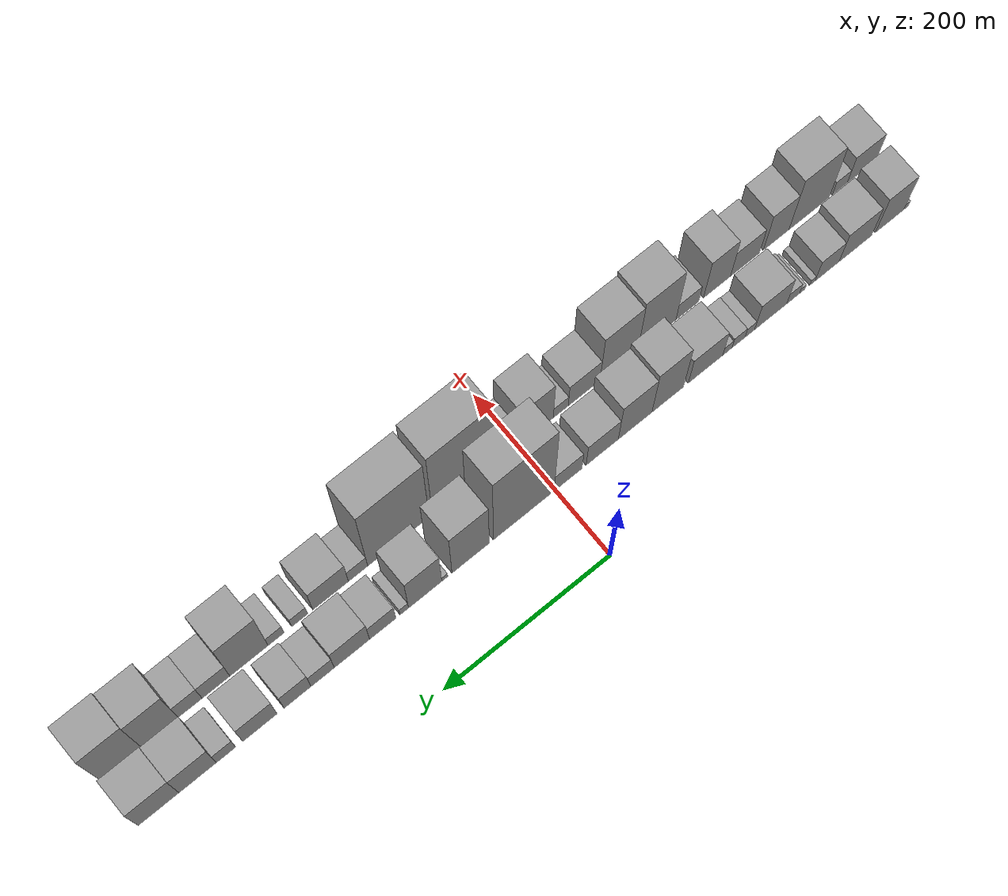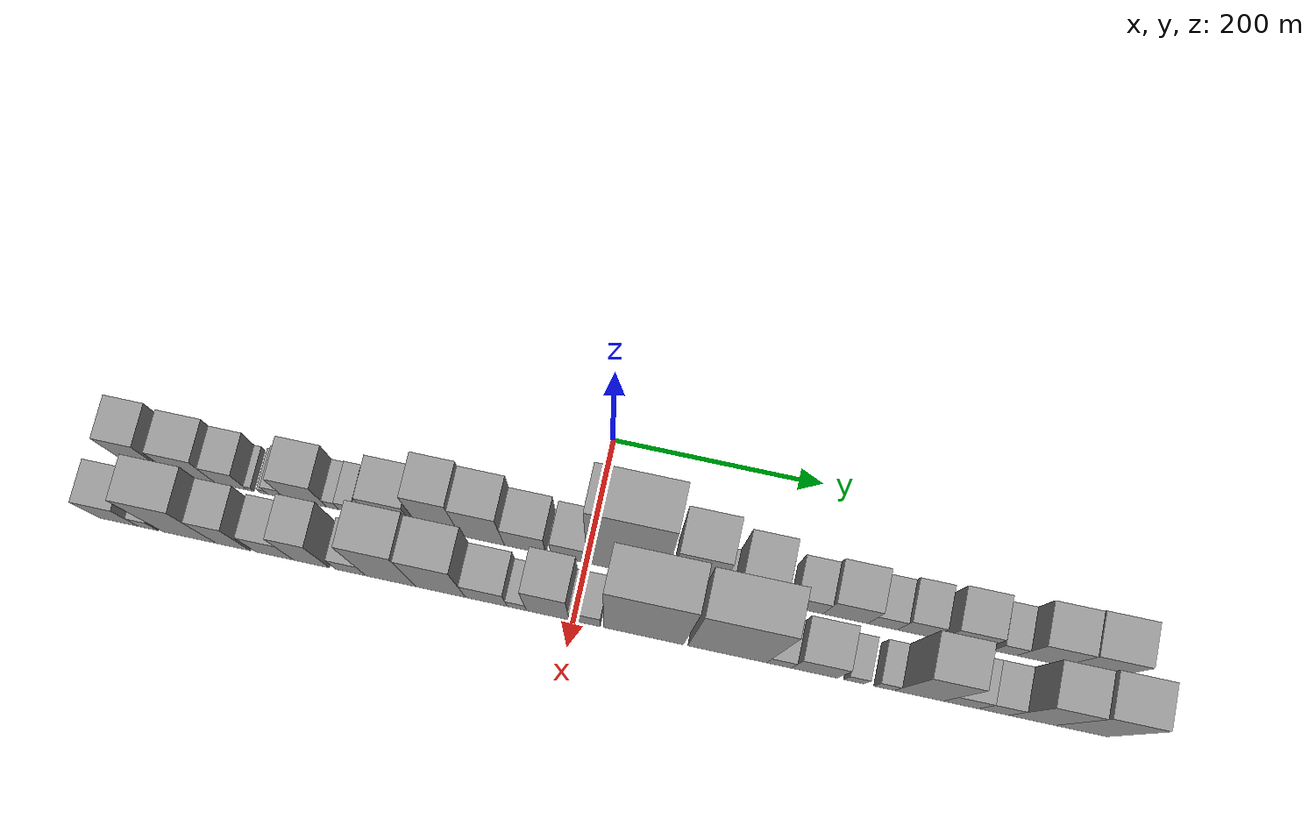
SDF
<sdf version="1.6">
 <world name="default">
  <scene>
   <sky><clouds><speed>12</speed></clouds></sky>
   <ambient>0.4 0.4 0.4 1</ambient>
   <background>0.7 0.7 0.7 1</background>
   <shadows>1</shadows>
  </scene>
  <gravity>0 0 -9.8066</gravity>
  <magnetic_field>6e-06 2.3e-05 -4.2e-05</magnetic_field>
  <physics default="0" name="default_physics" type="ode">
   <ode>
    <solver>
     <type>quick</type>
     <iters>10</iters>
     <sor>1.0</sor>
     <use_dynamic_moi_rescaling>0</use_dynamic_moi_rescaling>
    </solver>
    <constraints>
     <cfm>0</cfm>
     <erp>0.2</erp>
     <contact_max_correcting_vel>100</contact_max_correcting_vel>
     <contact_surface_layer>0.001</contact_surface_layer>
    </constraints>
   </ode>
   <max_step_size>0.004</max_step_size>
   <real_time_factor>1</real_time_factor>
   <real_time_update_rate>250</real_time_update_rate>
  </physics>
  <light name="sun" type="directional">
   <pose>0 0 10 0 0 0</pose>
   <diffuse>0.8 0.8 0.8 1</diffuse>
   <specular>0.2 0.2 0.2 1</specular>
   <attenuation>
    <range>1000</range>
    <constant>0.9</constant>
    <linear>0.01</linear>
    <quadratic>0.001</quadratic>
   </attenuation>
   <direction>-0.5 0.1 -0.9</direction>
  </light>
  <model name="building_1">
   <static>1</static>
   <pose>100.0000 -439.8868 0 0.000000 0.000000 0.000000</pose>
   <link name="link">
    <pose>0 0 7.50 0 0 0</pose>
    <collision name="collision"><geometry><box><size>40.0000 6.2265 15.0000</size></box></geometry></collision>
    <visual name="visual">
     <cast_shadows>0</cast_shadows>
     <geometry><box><size>40.0000 6.2265 15.0000</size></box></geometry>
     <material>
      <script>
       <uri>model://grey_wall/materials/scripts</uri>
       <uri>model://grey_wall/materials/textures</uri>
       <name>vrc/grey_wall</name>
      </script>
     </material>
    </visual>
   </link>
  </model>
  <model name="building_2">
   <static>1</static>
   <pose>100.0000 -418.5449 0 0.000000 0.000000 0.000000</pose>
   <link name="link">
    <pose>0 0 46.50 0 0 0</pose>
    <collision name="collision"><geometry><box><size>40.0000 36.4572 93.0000</size></box></geometry></collision>
    <visual name="visual">
     <cast_shadows>0</cast_shadows>
     <geometry><box><size>40.0000 36.4572 93.0000</size></box></geometry>
     <material>
      <script>
       <uri>model://grey_wall/materials/scripts</uri>
       <uri>model://grey_wall/materials/textures</uri>
       <name>vrc/grey_wall</name>
      </script>
     </material>
    </visual>
   </link>
  </model>
  <model name="building_3">
   <static>1</static>
   <pose>100.0000 -374.5498 0 0.000000 0.000000 0.000000</pose>
   <link name="link">
    <pose>0 0 39.00 0 0 0</pose>
    <collision name="collision"><geometry><box><size>40.0000 41.5331 78.0000</size></box></geometry></collision>
    <visual name="visual">
     <cast_shadows>0</cast_shadows>
     <geometry><box><size>40.0000 41.5331 78.0000</size></box></geometry>
     <material>
      <script>
       <uri>model://grey_wall/materials/scripts</uri>
       <uri>model://grey_wall/materials/textures</uri>
       <name>vrc/grey_wall</name>
      </script>
     </material>
    </visual>
   </link>
  </model>
  <model name="building_4">
   <static>1</static>
   <pose>100.0000 -338.5398 0 0.000000 0.000000 0.000000</pose>
   <link name="link">
    <pose>0 0 28.50 0 0 0</pose>
    <collision name="collision"><geometry><box><size>40.0000 30.4868 57.0000</size></box></geometry></collision>
    <visual name="visual">
     <cast_shadows>0</cast_shadows>
     <geometry><box><size>40.0000 30.4868 57.0000</size></box></geometry>
     <material>
      <script>
       <uri>model://grey_wall/materials/scripts</uri>
       <uri>model://grey_wall/materials/textures</uri>
       <name>vrc/grey_wall</name>
      </script>
     </material>
    </visual>
   </link>
  </model>
  <model name="building_5">
   <static>1</static>
   <pose>100.0000 -319.9477 0 0.000000 0.000000 0.000000</pose>
   <link name="link">
    <pose>0 0 7.50 0 0 0</pose>
    <collision name="collision"><geometry><box><size>40.0000 6.6975 15.0000</size></box></geometry></collision>
    <visual name="visual">
     <cast_shadows>0</cast_shadows>
     <geometry><box><size>40.0000 6.6975 15.0000</size></box></geometry>
     <material>
      <script>
       <uri>model://grey_wall/materials/scripts</uri>
       <uri>model://grey_wall/materials/textures</uri>
       <name>vrc/grey_wall</name>
      </script>
     </material>
    </visual>
   </link>
  </model>
  <model name="building_6">
   <static>1</static>
   <pose>100.0000 -307.1024 0 0.000000 0.000000 0.000000</pose>
   <link name="link">
    <pose>0 0 7.50 0 0 0</pose>
    <collision name="collision"><geometry><box><size>40.0000 6.9930 15.0000</size></box></geometry></collision>
    <visual name="visual">
     <cast_shadows>0</cast_shadows>
     <geometry><box><size>40.0000 6.9930 15.0000</size></box></geometry>
     <material>
      <script>
       <uri>model://grey_wall/materials/scripts</uri>
       <uri>model://grey_wall/materials/textures</uri>
       <name>vrc/grey_wall</name>
      </script>
     </material>
    </visual>
   </link>
  </model>
  <model name="building_7">
   <static>1</static>
   <pose>100.0000 -295.4672 0 0.000000 0.000000 0.000000</pose>
   <link name="link">
    <pose>0 0 15.00 0 0 0</pose>
    <collision name="collision"><geometry><box><size>40.0000 16.2773 30.0000</size></box></geometry></collision>
    <visual name="visual">
     <cast_shadows>0</cast_shadows>
     <geometry><box><size>40.0000 16.2773 30.0000</size></box></geometry>
     <material>
      <script>
       <uri>model://grey_wall/materials/scripts</uri>
       <uri>model://grey_wall/materials/textures</uri>
       <name>vrc/grey_wall</name>
      </script>
     </material>
    </visual>
   </link>
  </model>
  <model name="building_8">
   <static>1</static>
   <pose>100.0000 -267.0648 0 0.000000 0.000000 0.000000</pose>
   <link name="link">
    <pose>0 0 37.50 0 0 0</pose>
    <collision name="collision"><geometry><box><size>40.0000 40.5275 75.0000</size></box></geometry></collision>
    <visual name="visual">
     <cast_shadows>0</cast_shadows>
     <geometry><box><size>40.0000 40.5275 75.0000</size></box></geometry>
     <material>
      <script>
       <uri>model://grey_wall/materials/scripts</uri>
       <uri>model://grey_wall/materials/textures</uri>
       <name>vrc/grey_wall</name>
      </script>
     </material>
    </visual>
   </link>
  </model>
  <model name="building_9">
   <static>1</static>
   <pose>100.0000 -240.7931 0 0.000000 0.000000 0.000000</pose>
   <link name="link">
    <pose>0 0 13.50 0 0 0</pose>
    <collision name="collision"><geometry><box><size>40.0000 12.0158 27.0000</size></box></geometry></collision>
    <visual name="visual">
     <cast_shadows>0</cast_shadows>
     <geometry><box><size>40.0000 12.0158 27.0000</size></box></geometry>
     <material>
      <script>
       <uri>model://grey_wall/materials/scripts</uri>
       <uri>model://grey_wall/materials/textures</uri>
       <name>vrc/grey_wall</name>
      </script>
     </material>
    </visual>
   </link>
  </model>
  <model name="building_10">
   <static>1</static>
   <pose>100.0000 -226.6158 0 0.000000 0.000000 0.000000</pose>
   <link name="link">
    <pose>0 0 15.00 0 0 0</pose>
    <collision name="collision"><geometry><box><size>40.0000 16.3389 30.0000</size></box></geometry></collision>
    <visual name="visual">
     <cast_shadows>0</cast_shadows>
     <geometry><box><size>40.0000 16.3389 30.0000</size></box></geometry>
     <material>
      <script>
       <uri>model://grey_wall/materials/scripts</uri>
       <uri>model://grey_wall/materials/textures</uri>
       <name>vrc/grey_wall</name>
      </script>
     </material>
    </visual>
   </link>
  </model>
  <model name="building_11">
   <static>1</static>
   <pose>100.0000 -212.6617 0 0.000000 0.000000 0.000000</pose>
   <link name="link">
    <pose>0 0 12.00 0 0 0</pose>
    <collision name="collision"><geometry><box><size>40.0000 11.5691 24.0000</size></box></geometry></collision>
    <visual name="visual">
     <cast_shadows>0</cast_shadows>
     <geometry><box><size>40.0000 11.5691 24.0000</size></box></geometry>
     <material>
      <script>
       <uri>model://grey_wall/materials/scripts</uri>
       <uri>model://grey_wall/materials/textures</uri>
       <name>vrc/grey_wall</name>
      </script>
     </material>
    </visual>
   </link>
  </model>
  <model name="building_12">
   <static>1</static>
   <pose>100.0000 -185.4468 0 0.000000 0.000000 0.000000</pose>
   <link name="link">
    <pose>0 0 37.50 0 0 0</pose>
    <collision name="collision"><geometry><box><size>40.0000 42.8607 75.0000</size></box></geometry></collision>
    <visual name="visual">
     <cast_shadows>0</cast_shadows>
     <geometry><box><size>40.0000 42.8607 75.0000</size></box></geometry>
     <material>
      <script>
       <uri>model://grey_wall/materials/scripts</uri>
       <uri>model://grey_wall/materials/textures</uri>
       <name>vrc/grey_wall</name>
      </script>
     </material>
    </visual>
   </link>
  </model>
  <model name="building_13">
   <static>1</static>
   <pose>100.0000 -138.3917 0 0.000000 0.000000 0.000000</pose>
   <link name="link">
    <pose>0 0 63.00 0 0 0</pose>
    <collision name="collision"><geometry><box><size>40.0000 39.2497 126.0000</size></box></geometry></collision>
    <visual name="visual">
     <cast_shadows>0</cast_shadows>
     <geometry><box><size>40.0000 39.2497 126.0000</size></box></geometry>
     <material>
      <script>
       <uri>model://grey_wall/materials/scripts</uri>
       <uri>model://grey_wall/materials/textures</uri>
       <name>vrc/grey_wall</name>
      </script>
     </material>
    </visual>
   </link>
  </model>
  <model name="building_14">
   <static>1</static>
   <pose>100.0000 -98.0354 0 0.000000 0.000000 0.000000</pose>
   <link name="link">
    <pose>0 0 55.50 0 0 0</pose>
    <collision name="collision"><geometry><box><size>40.0000 41.4630 111.0000</size></box></geometry></collision>
    <visual name="visual">
     <cast_shadows>0</cast_shadows>
     <geometry><box><size>40.0000 41.4630 111.0000</size></box></geometry>
     <material>
      <script>
       <uri>model://grey_wall/materials/scripts</uri>
       <uri>model://grey_wall/materials/textures</uri>
       <name>vrc/grey_wall</name>
      </script>
     </material>
    </visual>
   </link>
  </model>
  <model name="building_15">
   <static>1</static>
   <pose>100.0000 -57.5483 0 0.000000 0.000000 0.000000</pose>
   <link name="link">
    <pose>0 0 34.50 0 0 0</pose>
    <collision name="collision"><geometry><box><size>40.0000 39.5112 69.0000</size></box></geometry></collision>
    <visual name="visual">
     <cast_shadows>0</cast_shadows>
     <geometry><box><size>40.0000 39.5112 69.0000</size></box></geometry>
     <material>
      <script>
       <uri>model://grey_wall/materials/scripts</uri>
       <uri>model://grey_wall/materials/textures</uri>
       <name>vrc/grey_wall</name>
      </script>
     </material>
    </visual>
   </link>
  </model>
  <model name="building_16">
   <static>1</static>
   <pose>100.0000 -15.7447 0 0.000000 0.000000 0.000000</pose>
   <link name="link">
    <pose>0 0 28.50 0 0 0</pose>
    <collision name="collision"><geometry><box><size>40.0000 34.0959 57.0000</size></box></geometry></collision>
    <visual name="visual">
     <cast_shadows>0</cast_shadows>
     <geometry><box><size>40.0000 34.0959 57.0000</size></box></geometry>
     <material>
      <script>
       <uri>model://grey_wall/materials/scripts</uri>
       <uri>model://grey_wall/materials/textures</uri>
       <name>vrc/grey_wall</name>
      </script>
     </material>
    </visual>
   </link>
  </model>
  <model name="building_17">
   <static>1</static>
   <pose>100.0000 38.0422 0 0.000000 0.000000 0.000000</pose>
   <link name="link">
    <pose>0 0 112.50 0 0 0</pose>
    <collision name="collision"><geometry><box><size>40.0000 73.4779 225.0000</size></box></geometry></collision>
    <visual name="visual">
     <cast_shadows>0</cast_shadows>
     <geometry><box><size>40.0000 73.4779 225.0000</size></box></geometry>
     <material>
      <script>
       <uri>model://grey_wall/materials/scripts</uri>
       <uri>model://grey_wall/materials/textures</uri>
       <name>vrc/grey_wall</name>
      </script>
     </material>
    </visual>
   </link>
  </model>
  <model name="building_18">
   <static>1</static>
   <pose>100.0000 102.1743 0 0.000000 0.000000 0.000000</pose>
   <link name="link">
    <pose>0 0 73.50 0 0 0</pose>
    <collision name="collision"><geometry><box><size>40.0000 44.7861 147.0000</size></box></geometry></collision>
    <visual name="visual">
     <cast_shadows>0</cast_shadows>
     <geometry><box><size>40.0000 44.7861 147.0000</size></box></geometry>
     <material>
      <script>
       <uri>model://grey_wall/materials/scripts</uri>
       <uri>model://grey_wall/materials/textures</uri>
       <name>vrc/grey_wall</name>
      </script>
     </material>
    </visual>
   </link>
  </model>
  <model name="building_19">
   <static>1</static>
   <pose>100.0000 133.1643 0 0.000000 0.000000 0.000000</pose>
   <link name="link">
    <pose>0 0 7.50 0 0 0</pose>
    <collision name="collision"><geometry><box><size>40.0000 7.1940 15.0000</size></box></geometry></collision>
    <visual name="visual">
     <cast_shadows>0</cast_shadows>
     <geometry><box><size>40.0000 7.1940 15.0000</size></box></geometry>
     <material>
      <script>
       <uri>model://grey_wall/materials/scripts</uri>
       <uri>model://grey_wall/materials/textures</uri>
       <name>vrc/grey_wall</name>
      </script>
     </material>
    </visual>
   </link>
  </model>
  <model name="building_20">
   <static>1</static>
   <pose>100.0000 156.5571 0 0.000000 0.000000 0.000000</pose>
   <link name="link">
    <pose>0 0 55.50 0 0 0</pose>
    <collision name="collision"><geometry><box><size>40.0000 39.5915 111.0000</size></box></geometry></collision>
    <visual name="visual">
     <cast_shadows>0</cast_shadows>
     <geometry><box><size>40.0000 39.5915 111.0000</size></box></geometry>
     <material>
      <script>
       <uri>model://grey_wall/materials/scripts</uri>
       <uri>model://grey_wall/materials/textures</uri>
       <name>vrc/grey_wall</name>
      </script>
     </material>
    </visual>
   </link>
  </model>
  <model name="building_21">
   <static>1</static>
   <pose>100.0000 181.4306 0 0.000000 0.000000 0.000000</pose>
   <link name="link">
    <pose>0 0 12.00 0 0 0</pose>
    <collision name="collision"><geometry><box><size>40.0000 10.1555 24.0000</size></box></geometry></collision>
    <visual name="visual">
     <cast_shadows>0</cast_shadows>
     <geometry><box><size>40.0000 10.1555 24.0000</size></box></geometry>
     <material>
      <script>
       <uri>model://grey_wall/materials/scripts</uri>
       <uri>model://grey_wall/materials/textures</uri>
       <name>vrc/grey_wall</name>
      </script>
     </material>
    </visual>
   </link>
  </model>
  <model name="building_22">
   <static>1</static>
   <pose>100.0000 207.0327 0 0.000000 0.000000 0.000000</pose>
   <link name="link">
    <pose>0 0 27.00 0 0 0</pose>
    <collision name="collision"><geometry><box><size>40.0000 31.0489 54.0000</size></box></geometry></collision>
    <visual name="visual">
     <cast_shadows>0</cast_shadows>
     <geometry><box><size>40.0000 31.0489 54.0000</size></box></geometry>
     <material>
      <script>
       <uri>model://grey_wall/materials/scripts</uri>
       <uri>model://grey_wall/materials/textures</uri>
       <name>vrc/grey_wall</name>
      </script>
     </material>
    </visual>
   </link>
  </model>
  <model name="building_23">
   <static>1</static>
   <pose>100.0000 243.3854 0 0.000000 0.000000 0.000000</pose>
   <link name="link">
    <pose>0 0 36.00 0 0 0</pose>
    <collision name="collision"><geometry><box><size>40.0000 41.6564 72.0000</size></box></geometry></collision>
    <visual name="visual">
     <cast_shadows>0</cast_shadows>
     <geometry><box><size>40.0000 41.6564 72.0000</size></box></geometry>
     <material>
      <script>
       <uri>model://grey_wall/materials/scripts</uri>
       <uri>model://grey_wall/materials/textures</uri>
       <name>vrc/grey_wall</name>
      </script>
     </material>
    </visual>
   </link>
  </model>
  <model name="building_24">
   <static>1</static>
   <pose>100.0000 277.8850 0 0.000000 0.000000 0.000000</pose>
   <link name="link">
    <pose>0 0 24.00 0 0 0</pose>
    <collision name="collision"><geometry><box><size>40.0000 27.3429 48.0000</size></box></geometry></collision>
    <visual name="visual">
     <cast_shadows>0</cast_shadows>
     <geometry><box><size>40.0000 27.3429 48.0000</size></box></geometry>
     <material>
      <script>
       <uri>model://grey_wall/materials/scripts</uri>
       <uri>model://grey_wall/materials/textures</uri>
       <name>vrc/grey_wall</name>
      </script>
     </material>
    </visual>
   </link>
  </model>
  <model name="building_25">
   <static>1</static>
   <pose>100.0000 307.3189 0 0.000000 0.000000 0.000000</pose>
   <link name="link">
    <pose>0 0 30.00 0 0 0</pose>
    <collision name="collision"><geometry><box><size>40.0000 31.5249 60.0000</size></box></geometry></collision>
    <visual name="visual">
     <cast_shadows>0</cast_shadows>
     <geometry><box><size>40.0000 31.5249 60.0000</size></box></geometry>
     <material>
      <script>
       <uri>model://grey_wall/materials/scripts</uri>
       <uri>model://grey_wall/materials/textures</uri>
       <name>vrc/grey_wall</name>
      </script>
     </material>
    </visual>
   </link>
  </model>
  <model name="building_26">
   <static>1</static>
   <pose>100.0000 351.1541 0 0.000000 0.000000 0.000000</pose>
   <link name="link">
    <pose>0 0 34.50 0 0 0</pose>
    <collision name="collision"><geometry><box><size>40.0000 40.1455 69.0000</size></box></geometry></collision>
    <visual name="visual">
     <cast_shadows>0</cast_shadows>
     <geometry><box><size>40.0000 40.1455 69.0000</size></box></geometry>
     <material>
      <script>
       <uri>model://grey_wall/materials/scripts</uri>
       <uri>model://grey_wall/materials/textures</uri>
       <name>vrc/grey_wall</name>
      </script>
     </material>
    </visual>
   </link>
  </model>
  <model name="building_27">
   <static>1</static>
   <pose>100.0000 390.4270 0 0.000000 0.000000 0.000000</pose>
   <link name="link">
    <pose>0 0 21.00 0 0 0</pose>
    <collision name="collision"><geometry><box><size>40.0000 22.4004 42.0000</size></box></geometry></collision>
    <visual name="visual">
     <cast_shadows>0</cast_shadows>
     <geometry><box><size>40.0000 22.4004 42.0000</size></box></geometry>
     <material>
      <script>
       <uri>model://grey_wall/materials/scripts</uri>
       <uri>model://grey_wall/materials/textures</uri>
       <name>vrc/grey_wall</name>
      </script>
     </material>
    </visual>
   </link>
  </model>
  <model name="building_28">
   <static>1</static>
   <pose>100.0000 423.1627 0 0.000000 0.000000 0.000000</pose>
   <link name="link">
    <pose>0 0 42.00 0 0 0</pose>
    <collision name="collision"><geometry><box><size>40.0000 43.0710 84.0000</size></box></geometry></collision>
    <visual name="visual">
     <cast_shadows>0</cast_shadows>
     <geometry><box><size>40.0000 43.0710 84.0000</size></box></geometry>
     <material>
      <script>
       <uri>model://grey_wall/materials/scripts</uri>
       <uri>model://grey_wall/materials/textures</uri>
       <name>vrc/grey_wall</name>
      </script>
     </material>
    </visual>
   </link>
  </model>
  <model name="building_29">
   <static>1</static>
   <pose>100.0000 468.0268 0 0.000000 0.000000 0.000000</pose>
   <link name="link">
    <pose>0 0 43.50 0 0 0</pose>
    <collision name="collision"><geometry><box><size>40.0000 46.6573 87.0000</size></box></geometry></collision>
    <visual name="visual">
     <cast_shadows>0</cast_shadows>
     <geometry><box><size>40.0000 46.6573 87.0000</size></box></geometry>
     <material>
      <script>
       <uri>model://grey_wall/materials/scripts</uri>
       <uri>model://grey_wall/materials/textures</uri>
       <name>vrc/grey_wall</name>
      </script>
     </material>
    </visual>
   </link>
  </model>
  <model name="building_30">
   <static>1</static>
   <pose>155.0000 -431.1921 0 0.000000 0.000000 0.000000</pose>
   <link name="link">
    <pose>0 0 34.50 0 0 0</pose>
    <collision name="collision"><geometry><box><size>40.0000 37.6158 69.0000</size></box></geometry></collision>
    <visual name="visual">
     <cast_shadows>0</cast_shadows>
     <geometry><box><size>40.0000 37.6158 69.0000</size></box></geometry>
     <material>
      <script>
       <uri>model://grey_wall/materials/scripts</uri>
       <uri>model://grey_wall/materials/textures</uri>
       <name>vrc/grey_wall</name>
      </script>
     </material>
    </visual>
   </link>
  </model>
  <model name="building_31">
   <static>1</static>
   <pose>155.0000 -402.8935 0 0.000000 0.000000 0.000000</pose>
   <link name="link">
    <pose>0 0 18.00 0 0 0</pose>
    <collision name="collision"><geometry><box><size>40.0000 18.9815 36.0000</size></box></geometry></collision>
    <visual name="visual">
     <cast_shadows>0</cast_shadows>
     <geometry><box><size>40.0000 18.9815 36.0000</size></box></geometry>
     <material>
      <script>
       <uri>model://grey_wall/materials/scripts</uri>
       <uri>model://grey_wall/materials/textures</uri>
       <name>vrc/grey_wall</name>
      </script>
     </material>
    </visual>
   </link>
  </model>
  <model name="building_32">
   <static>1</static>
   <pose>155.0000 -363.7264 0 0.000000 0.000000 0.000000</pose>
   <link name="link">
    <pose>0 0 67.50 0 0 0</pose>
    <collision name="collision"><geometry><box><size>40.0000 51.3527 135.0000</size></box></geometry></collision>
    <visual name="visual">
     <cast_shadows>0</cast_shadows>
     <geometry><box><size>40.0000 51.3527 135.0000</size></box></geometry>
     <material>
      <script>
       <uri>model://grey_wall/materials/scripts</uri>
       <uri>model://grey_wall/materials/textures</uri>
       <name>vrc/grey_wall</name>
      </script>
     </material>
    </visual>
   </link>
  </model>
  <model name="building_33">
   <static>1</static>
   <pose>155.0000 -321.7679 0 0.000000 0.000000 0.000000</pose>
   <link name="link">
    <pose>0 0 48.00 0 0 0</pose>
    <collision name="collision"><geometry><box><size>40.0000 32.5644 96.0000</size></box></geometry></collision>
    <visual name="visual">
     <cast_shadows>0</cast_shadows>
     <geometry><box><size>40.0000 32.5644 96.0000</size></box></geometry>
     <material>
      <script>
       <uri>model://grey_wall/materials/scripts</uri>
       <uri>model://grey_wall/materials/textures</uri>
       <name>vrc/grey_wall</name>
      </script>
     </material>
    </visual>
   </link>
  </model>
  <model name="building_34">
   <static>1</static>
   <pose>155.0000 -282.2105 0 0.000000 0.000000 0.000000</pose>
   <link name="link">
    <pose>0 0 34.50 0 0 0</pose>
    <collision name="collision"><geometry><box><size>40.0000 36.5504 69.0000</size></box></geometry></collision>
    <visual name="visual">
     <cast_shadows>0</cast_shadows>
     <geometry><box><size>40.0000 36.5504 69.0000</size></box></geometry>
     <material>
      <script>
       <uri>model://grey_wall/materials/scripts</uri>
       <uri>model://grey_wall/materials/textures</uri>
       <name>vrc/grey_wall</name>
      </script>
     </material>
    </visual>
   </link>
  </model>
  <model name="building_35">
   <static>1</static>
   <pose>155.0000 -246.9146 0 0.000000 0.000000 0.000000</pose>
   <link name="link">
    <pose>0 0 52.50 0 0 0</pose>
    <collision name="collision"><geometry><box><size>40.0000 34.0413 105.0000</size></box></geometry></collision>
    <visual name="visual">
     <cast_shadows>0</cast_shadows>
     <geometry><box><size>40.0000 34.0413 105.0000</size></box></geometry>
     <material>
      <script>
       <uri>model://grey_wall/materials/scripts</uri>
       <uri>model://grey_wall/materials/textures</uri>
       <name>vrc/grey_wall</name>
      </script>
     </material>
    </visual>
   </link>
  </model>
  <model name="building_36">
   <static>1</static>
   <pose>155.0000 -209.5826 0 0.000000 0.000000 0.000000</pose>
   <link name="link">
    <pose>0 0 24.00 0 0 0</pose>
    <collision name="collision"><geometry><box><size>40.0000 28.6228 48.0000</size></box></geometry></collision>
    <visual name="visual">
     <cast_shadows>0</cast_shadows>
     <geometry><box><size>40.0000 28.6228 48.0000</size></box></geometry>
     <material>
      <script>
       <uri>model://grey_wall/materials/scripts</uri>
       <uri>model://grey_wall/materials/textures</uri>
       <name>vrc/grey_wall</name>
      </script>
     </material>
    </visual>
   </link>
  </model>
  <model name="building_37">
   <static>1</static>
   <pose>155.0000 -171.6136 0 0.000000 0.000000 0.000000</pose>
   <link name="link">
    <pose>0 0 73.50 0 0 0</pose>
    <collision name="collision"><geometry><box><size>40.0000 47.3151 147.0000</size></box></geometry></collision>
    <visual name="visual">
     <cast_shadows>0</cast_shadows>
     <geometry><box><size>40.0000 47.3151 147.0000</size></box></geometry>
     <material>
      <script>
       <uri>model://grey_wall/materials/scripts</uri>
       <uri>model://grey_wall/materials/textures</uri>
       <name>vrc/grey_wall</name>
      </script>
     </material>
    </visual>
   </link>
  </model>
  <model name="building_38">
   <static>1</static>
   <pose>155.0000 -124.3700 0 0.000000 0.000000 0.000000</pose>
   <link name="link">
    <pose>0 0 67.50 0 0 0</pose>
    <collision name="collision"><geometry><box><size>40.0000 47.1722 135.0000</size></box></geometry></collision>
    <visual name="visual">
     <cast_shadows>0</cast_shadows>
     <geometry><box><size>40.0000 47.1722 135.0000</size></box></geometry>
     <material>
      <script>
       <uri>model://grey_wall/materials/scripts</uri>
       <uri>model://grey_wall/materials/textures</uri>
       <name>vrc/grey_wall</name>
      </script>
     </material>
    </visual>
   </link>
  </model>
  <model name="building_39">
   <static>1</static>
   <pose>155.0000 -81.2567 0 0.000000 0.000000 0.000000</pose>
   <link name="link">
    <pose>0 0 33.00 0 0 0</pose>
    <collision name="collision"><geometry><box><size>40.0000 39.0544 66.0000</size></box></geometry></collision>
    <visual name="visual">
     <cast_shadows>0</cast_shadows>
     <geometry><box><size>40.0000 39.0544 66.0000</size></box></geometry>
     <material>
      <script>
       <uri>model://grey_wall/materials/scripts</uri>
       <uri>model://grey_wall/materials/textures</uri>
       <name>vrc/grey_wall</name>
      </script>
     </material>
    </visual>
   </link>
  </model>
  <model name="building_40">
   <static>1</static>
   <pose>155.0000 -52.5370 0 0.000000 0.000000 0.000000</pose>
   <link name="link">
    <pose>0 0 16.50 0 0 0</pose>
    <collision name="collision"><geometry><box><size>40.0000 18.3850 33.0000</size></box></geometry></collision>
    <visual name="visual">
     <cast_shadows>0</cast_shadows>
     <geometry><box><size>40.0000 18.3850 33.0000</size></box></geometry>
     <material>
      <script>
       <uri>model://grey_wall/materials/scripts</uri>
       <uri>model://grey_wall/materials/textures</uri>
       <name>vrc/grey_wall</name>
      </script>
     </material>
    </visual>
   </link>
  </model>
  <model name="building_41">
   <static>1</static>
   <pose>155.0000 -23.5207 0 0.000000 0.000000 0.000000</pose>
   <link name="link">
    <pose>0 0 57.00 0 0 0</pose>
    <collision name="collision"><geometry><box><size>40.0000 39.6477 114.0000</size></box></geometry></collision>
    <visual name="visual">
     <cast_shadows>0</cast_shadows>
     <geometry><box><size>40.0000 39.6477 114.0000</size></box></geometry>
     <material>
      <script>
       <uri>model://grey_wall/materials/scripts</uri>
       <uri>model://grey_wall/materials/textures</uri>
       <name>vrc/grey_wall</name>
      </script>
     </material>
    </visual>
   </link>
  </model>
  <model name="building_42">
   <static>1</static>
   <pose>155.0000 10.9293 0 0.000000 0.000000 0.000000</pose>
   <link name="link">
    <pose>0 0 25.50 0 0 0</pose>
    <collision name="collision"><geometry><box><size>40.0000 29.2522 51.0000</size></box></geometry></collision>
    <visual name="visual">
     <cast_shadows>0</cast_shadows>
     <geometry><box><size>40.0000 29.2522 51.0000</size></box></geometry>
     <material>
      <script>
       <uri>model://grey_wall/materials/scripts</uri>
       <uri>model://grey_wall/materials/textures</uri>
       <name>vrc/grey_wall</name>
      </script>
     </material>
    </visual>
   </link>
  </model>
  <model name="building_43">
   <static>1</static>
   <pose>155.0000 65.9128 0 0.000000 0.000000 0.000000</pose>
   <link name="link">
    <pose>0 0 108.00 0 0 0</pose>
    <collision name="collision"><geometry><box><size>40.0000 74.7147 216.0000</size></box></geometry></collision>
    <visual name="visual">
     <cast_shadows>0</cast_shadows>
     <geometry><box><size>40.0000 74.7147 216.0000</size></box></geometry>
     <material>
      <script>
       <uri>model://grey_wall/materials/scripts</uri>
       <uri>model://grey_wall/materials/textures</uri>
       <name>vrc/grey_wall</name>
      </script>
     </material>
    </visual>
   </link>
  </model>
  <model name="building_44">
   <static>1</static>
   <pose>155.0000 144.0266 0 0.000000 0.000000 0.000000</pose>
   <link name="link">
    <pose>0 0 102.00 0 0 0</pose>
    <collision name="collision"><geometry><box><size>40.0000 73.5130 204.0000</size></box></geometry></collision>
    <visual name="visual">
     <cast_shadows>0</cast_shadows>
     <geometry><box><size>40.0000 73.5130 204.0000</size></box></geometry>
     <material>
      <script>
       <uri>model://grey_wall/materials/scripts</uri>
       <uri>model://grey_wall/materials/textures</uri>
       <name>vrc/grey_wall</name>
      </script>
     </material>
    </visual>
   </link>
  </model>
  <model name="building_45">
   <static>1</static>
   <pose>155.0000 192.2260 0 0.000000 0.000000 0.000000</pose>
   <link name="link">
    <pose>0 0 19.50 0 0 0</pose>
    <collision name="collision"><geometry><box><size>40.0000 22.8858 39.0000</size></box></geometry></collision>
    <visual name="visual">
     <cast_shadows>0</cast_shadows>
     <geometry><box><size>40.0000 22.8858 39.0000</size></box></geometry>
     <material>
      <script>
       <uri>model://grey_wall/materials/scripts</uri>
       <uri>model://grey_wall/materials/textures</uri>
       <name>vrc/grey_wall</name>
      </script>
     </material>
    </visual>
   </link>
  </model>
  <model name="building_46">
   <static>1</static>
   <pose>155.0000 224.8003 0 0.000000 0.000000 0.000000</pose>
   <link name="link">
    <pose>0 0 36.00 0 0 0</pose>
    <collision name="collision"><geometry><box><size>40.0000 42.2627 72.0000</size></box></geometry></collision>
    <visual name="visual">
     <cast_shadows>0</cast_shadows>
     <geometry><box><size>40.0000 42.2627 72.0000</size></box></geometry>
     <material>
      <script>
       <uri>model://grey_wall/materials/scripts</uri>
       <uri>model://grey_wall/materials/textures</uri>
       <name>vrc/grey_wall</name>
      </script>
     </material>
    </visual>
   </link>
  </model>
  <model name="building_47">
   <static>1</static>
   <pose>155.0000 261.2973 0 0.000000 0.000000 0.000000</pose>
   <link name="link">
    <pose>0 0 16.50 0 0 0</pose>
    <collision name="collision"><geometry><box><size>40.0000 18.7314 33.0000</size></box></geometry></collision>
    <visual name="visual">
     <cast_shadows>0</cast_shadows>
     <geometry><box><size>40.0000 18.7314 33.0000</size></box></geometry>
     <material>
      <script>
       <uri>model://grey_wall/materials/scripts</uri>
       <uri>model://grey_wall/materials/textures</uri>
       <name>vrc/grey_wall</name>
      </script>
     </material>
    </visual>
   </link>
  </model>
  <model name="building_48">
   <static>1</static>
   <pose>155.0000 289.0860 0 0.000000 0.000000 0.000000</pose>
   <link name="link">
    <pose>0 0 16.50 0 0 0</pose>
    <collision name="collision"><geometry><box><size>40.0000 18.8460 33.0000</size></box></geometry></collision>
    <visual name="visual">
     <cast_shadows>0</cast_shadows>
     <geometry><box><size>40.0000 18.8460 33.0000</size></box></geometry>
     <material>
      <script>
       <uri>model://grey_wall/materials/scripts</uri>
       <uri>model://grey_wall/materials/textures</uri>
       <name>vrc/grey_wall</name>
      </script>
     </material>
    </visual>
   </link>
  </model>
  <model name="building_49">
   <static>1</static>
   <pose>155.0000 320.8864 0 0.000000 0.000000 0.000000</pose>
   <link name="link">
    <pose>0 0 69.00 0 0 0</pose>
    <collision name="collision"><geometry><box><size>40.0000 44.7547 138.0000</size></box></geometry></collision>
    <visual name="visual">
     <cast_shadows>0</cast_shadows>
     <geometry><box><size>40.0000 44.7547 138.0000</size></box></geometry>
     <material>
      <script>
       <uri>model://grey_wall/materials/scripts</uri>
       <uri>model://grey_wall/materials/textures</uri>
       <name>vrc/grey_wall</name>
      </script>
     </material>
    </visual>
   </link>
  </model>
  <model name="building_50">
   <static>1</static>
   <pose>155.0000 359.4012 0 0.000000 0.000000 0.000000</pose>
   <link name="link">
    <pose>0 0 27.00 0 0 0</pose>
    <collision name="collision"><geometry><box><size>40.0000 32.2749 54.0000</size></box></geometry></collision>
    <visual name="visual">
     <cast_shadows>0</cast_shadows>
     <geometry><box><size>40.0000 32.2749 54.0000</size></box></geometry>
     <material>
      <script>
       <uri>model://grey_wall/materials/scripts</uri>
       <uri>model://grey_wall/materials/textures</uri>
       <name>vrc/grey_wall</name>
      </script>
     </material>
    </visual>
   </link>
  </model>
  <model name="building_51">
   <static>1</static>
   <pose>155.0000 389.4443 0 0.000000 0.000000 0.000000</pose>
   <link name="link">
    <pose>0 0 27.00 0 0 0</pose>
    <collision name="collision"><geometry><box><size>40.0000 27.8113 54.0000</size></box></geometry></collision>
    <visual name="visual">
     <cast_shadows>0</cast_shadows>
     <geometry><box><size>40.0000 27.8113 54.0000</size></box></geometry>
     <material>
      <script>
       <uri>model://grey_wall/materials/scripts</uri>
       <uri>model://grey_wall/materials/textures</uri>
       <name>vrc/grey_wall</name>
      </script>
     </material>
    </visual>
   </link>
  </model>
  <model name="building_52">
   <static>1</static>
   <pose>155.0000 424.6822 0 0.000000 0.000000 0.000000</pose>
   <link name="link">
    <pose>0 0 61.50 0 0 0</pose>
    <collision name="collision"><geometry><box><size>40.0000 42.6647 123.0000</size></box></geometry></collision>
    <visual name="visual">
     <cast_shadows>0</cast_shadows>
     <geometry><box><size>40.0000 42.6647 123.0000</size></box></geometry>
     <material>
      <script>
       <uri>model://grey_wall/materials/scripts</uri>
       <uri>model://grey_wall/materials/textures</uri>
       <name>vrc/grey_wall</name>
      </script>
     </material>
    </visual>
   </link>
  </model>
  <model name="building_53">
   <static>1</static>
   <pose>155.0000 469.6901 0 0.000000 0.000000 0.000000</pose>
   <link name="link">
    <pose>0 0 66.00 0 0 0</pose>
    <collision name="collision"><geometry><box><size>40.0000 47.3510 132.0000</size></box></geometry></collision>
    <visual name="visual">
     <cast_shadows>0</cast_shadows>
     <geometry><box><size>40.0000 47.3510 132.0000</size></box></geometry>
     <material>
      <script>
       <uri>model://grey_wall/materials/scripts</uri>
       <uri>model://grey_wall/materials/textures</uri>
       <name>vrc/grey_wall</name>
      </script>
     </material>
    </visual>
   </link>
  </model>
 </world>
</sdf>
